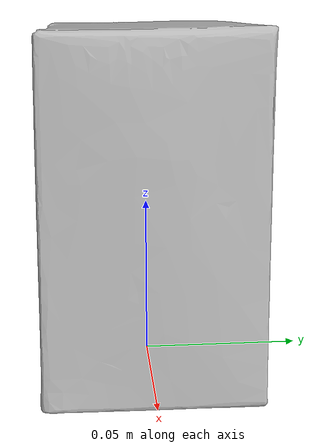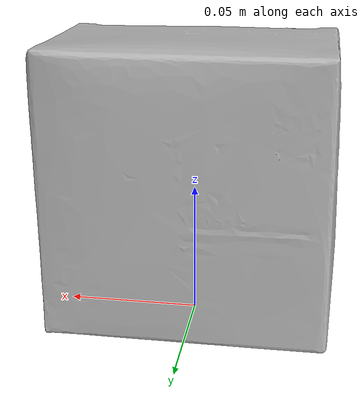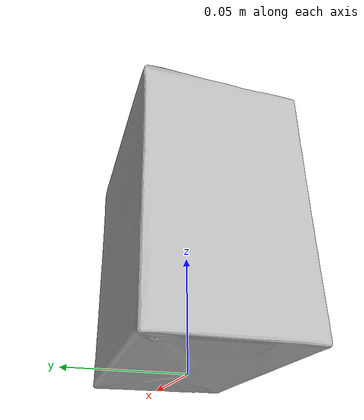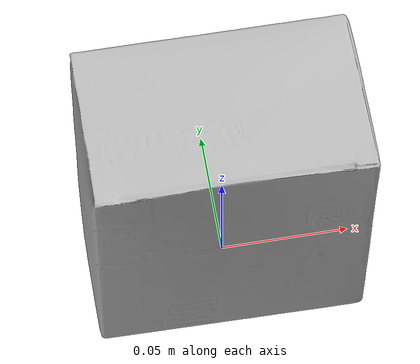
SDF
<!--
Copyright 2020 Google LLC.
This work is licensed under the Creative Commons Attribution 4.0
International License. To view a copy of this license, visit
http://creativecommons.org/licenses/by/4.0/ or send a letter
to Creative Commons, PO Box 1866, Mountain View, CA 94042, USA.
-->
<?xml version="1.0" ?>
<sdf version="1.6">
  <model name="Philips_EcoVantage_43_W_Light_Bulbs_Natural_Light_2_pack">
    <link name="link_0">
      <visual name="visual">
        <geometry>
          <mesh>
            <uri>meshes/model.obj</uri>
          </mesh>
        </geometry>
      </visual>
      <collision name="collision_0">
        <geometry>
          <mesh>
            <uri>meshes/model.obj</uri>
          </mesh>
        </geometry>
      </collision>
    </link>
  </model>
</sdf>
